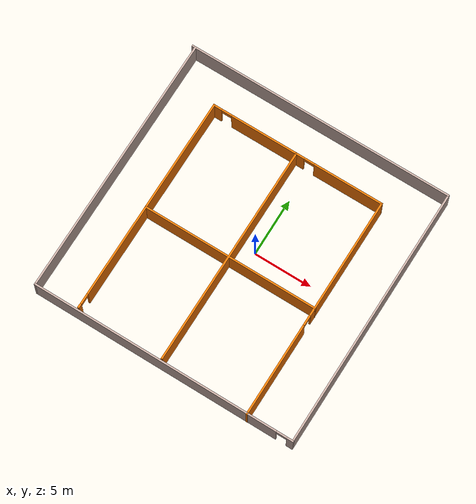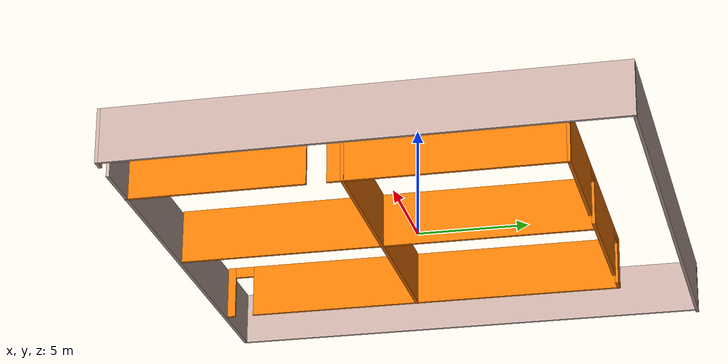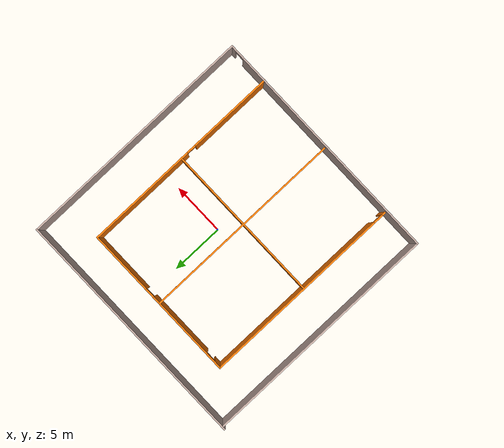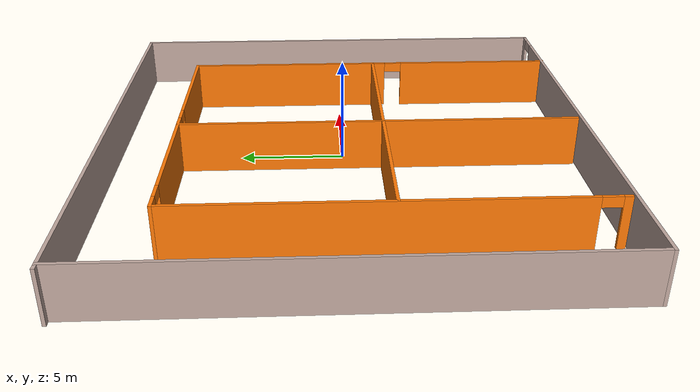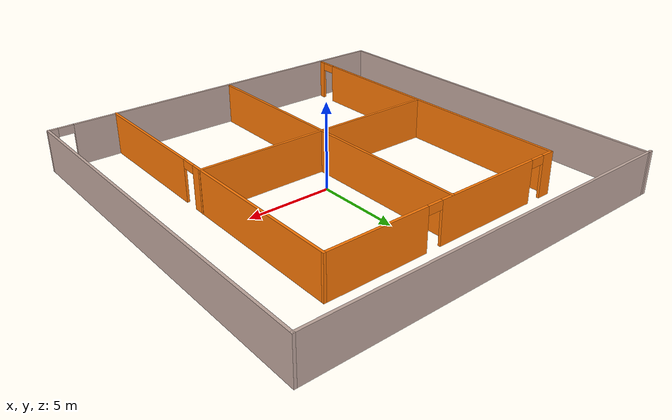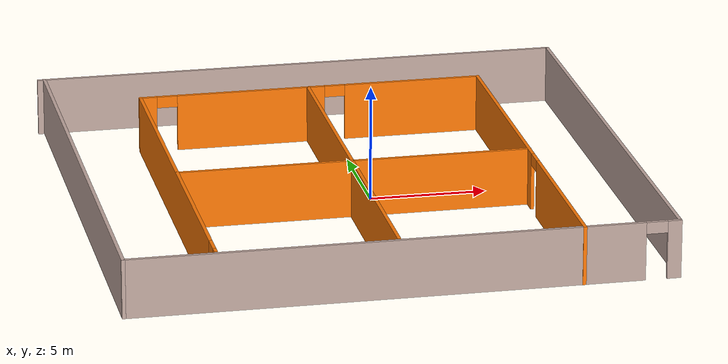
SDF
<?xml version='1.0'?>
<sdf version='1.6'>
  <model name='Building2'>
    <pose frame=''>-1.11523 -0.201092 0 0 -0 0</pose>
    <link name='Wall_0'>
      <collision name='Wall_0_Collision'>
        <geometry>
          <box>
            <size>23.25 0.15 2.5</size>
          </box>
        </geometry>
        <pose frame=''>0 0 1.25 0 -0 0</pose>
      </collision>
      <visual name='Wall_0_Visual'>
        <pose frame=''>0 0 1.25 0 -0 0</pose>
        <geometry>
          <box>
            <size>23.25 0.15 2.5</size>
          </box>
        </geometry>
        <material>
          <script>
            <uri>file://media/materials/scripts/gazebo.material</uri>
            <name>Gazebo/Grey</name>
          </script>
          <ambient>0.760784 0.662745 0.627451 1</ambient>
        </material>
        <meta>
          <layer>0</layer>
        </meta>
      </visual>
      <pose frame=''>-1e-06 11.3105 0 0 -0 0</pose>
    </link>
    <link name='Wall_1'>
      <collision name='Wall_1_Collision'>
        <geometry>
          <box>
            <size>22.75 0.15 2.5</size>
          </box>
        </geometry>
        <pose frame=''>0 0 1.25 0 -0 0</pose>
      </collision>
      <visual name='Wall_1_Visual'>
        <pose frame=''>0 0 1.25 0 -0 0</pose>
        <geometry>
          <box>
            <size>22.75 0.15 2.5</size>
          </box>
        </geometry>
        <material>
          <script>
            <uri>file://media/materials/scripts/gazebo.material</uri>
            <name>Gazebo/Grey</name>
          </script>
          <ambient>0.760784 0.662745 0.627451 1</ambient>
        </material>
        <meta>
          <layer>0</layer>
        </meta>
      </visual>
      <pose frame=''>11.55 0.010515 0 0 0 -1.5708</pose>
    </link>
    <link name='Wall_13'>
      <collision name='Wall_13_Collision'>
        <geometry>
          <box>
            <size>19.25 0.15 2.5</size>
          </box>
        </geometry>
        <pose frame=''>0 0 1.25 0 -0 0</pose>
      </collision>
      <visual name='Wall_13_Visual'>
        <pose frame=''>0 0 1.25 0 -0 0</pose>
        <geometry>
          <box>
            <size>19.25 0.15 2.5</size>
          </box>
        </geometry>
        <material>
          <script>
            <uri>file://media/materials/scripts/gazebo.material</uri>
            <name>Gazebo/Grey</name>
          </script>
          <ambient>0.996078 0.47451 0.0196078 1</ambient>
        </material>
        <meta>
          <layer>0</layer>
        </meta>
      </visual>
      <pose frame=''>-0.068329 -1.51737 0 0 0 -1.5708</pose>
    </link>
    <link name='Wall_2'>
      <pose frame=''>0.124999 -11.2895 0 0 -0 3.14159</pose>
      <visual name='Wall_2_Visual_0'>
        <pose frame=''>-11.2049 0 1.25 0 -0 0</pose>
        <geometry>
          <box>
            <size>0.590222 0.15 2.5</size>
          </box>
        </geometry>
        <material>
          <script>
            <uri>file://media/materials/scripts/gazebo.material</uri>
            <name>Gazebo/Grey</name>
          </script>
          <ambient>0.760784 0.662745 0.627451 1</ambient>
        </material>
        <meta>
          <layer>0</layer>
        </meta>
      </visual>
      <collision name='Wall_2_Collision_0'>
        <geometry>
          <box>
            <size>0.590222 0.15 2.5</size>
          </box>
        </geometry>
        <pose frame=''>-11.2049 0 1.25 0 -0 0</pose>
      </collision>
      <visual name='Wall_2_Visual_1'>
        <pose frame=''>0.745111 0 1.25 0 -0 0</pose>
        <geometry>
          <box>
            <size>21.5098 0.15 2.5</size>
          </box>
        </geometry>
        <material>
          <script>
            <uri>file://media/materials/scripts/gazebo.material</uri>
            <name>Gazebo/Grey</name>
          </script>
          <ambient>0.760784 0.662745 0.627451 1</ambient>
        </material>
        <meta>
          <layer>0</layer>
        </meta>
      </visual>
      <collision name='Wall_2_Collision_1'>
        <geometry>
          <box>
            <size>21.5098 0.15 2.5</size>
          </box>
        </geometry>
        <pose frame=''>0.745111 0 1.25 0 -0 0</pose>
      </collision>
      <visual name='Wall_2_Visual_2'>
        <pose frame=''>-10.4598 0 2.25 0 -0 0</pose>
        <geometry>
          <box>
            <size>0.9 0.15 0.5</size>
          </box>
        </geometry>
        <material>
          <script>
            <uri>file://media/materials/scripts/gazebo.material</uri>
            <name>Gazebo/Grey</name>
          </script>
          <ambient>0.760784 0.662745 0.627451 1</ambient>
        </material>
        <meta>
          <layer>0</layer>
        </meta>
      </visual>
      <collision name='Wall_2_Collision_2'>
        <geometry>
          <box>
            <size>0.9 0.15 0.5</size>
          </box>
        </geometry>
        <pose frame=''>-10.4598 0 2.25 0 -0 0</pose>
      </collision>
    </link>
    <link name='Wall_3'>
      <collision name='Wall_3_Collision'>
        <geometry>
          <box>
            <size>22.75 0.15 2.5</size>
          </box>
        </geometry>
        <pose frame=''>0 0 1.25 0 -0 0</pose>
      </collision>
      <visual name='Wall_3_Visual'>
        <pose frame=''>0 0 1.25 0 -0 0</pose>
        <geometry>
          <box>
            <size>22.75 0.15 2.5</size>
          </box>
        </geometry>
        <material>
          <script>
            <uri>file://media/materials/scripts/gazebo.material</uri>
            <name>Gazebo/Grey</name>
          </script>
          <ambient>0.760784 0.662745 0.627451 1</ambient>
        </material>
        <meta>
          <layer>0</layer>
        </meta>
      </visual>
      <pose frame=''>-11.3 0.010515 0 0 -0 1.5708</pose>
    </link>
    <link name='Wall_5'>
      <pose frame=''>7.57209 -1.63552 0 0 -0 1.5708</pose>
      <visual name='Wall_5_Visual_0'>
        <pose frame=''>-5.69826 0 1.25 0 -0 0</pose>
        <geometry>
          <box>
            <size>8.10348 0.15 2.5</size>
          </box>
        </geometry>
        <material>
          <script>
            <uri>file://media/materials/scripts/gazebo.material</uri>
            <name>Gazebo/Grey</name>
          </script>
          <ambient>0.996078 0.47451 0.0196078 1</ambient>
        </material>
        <meta>
          <layer>0</layer>
        </meta>
      </visual>
      <collision name='Wall_5_Collision_0'>
        <geometry>
          <box>
            <size>8.10348 0.15 2.5</size>
          </box>
        </geometry>
        <pose frame=''>-5.69826 0 1.25 0 -0 0</pose>
      </collision>
      <visual name='Wall_5_Visual_1'>
        <pose frame=''>4.50174 0 1.25 0 -0 0</pose>
        <geometry>
          <box>
            <size>10.4965 0.15 2.5</size>
          </box>
        </geometry>
        <material>
          <script>
            <uri>file://media/materials/scripts/gazebo.material</uri>
            <name>Gazebo/Grey</name>
          </script>
          <ambient>0.996078 0.47451 0.0196078 1</ambient>
        </material>
        <meta>
          <layer>0</layer>
        </meta>
      </visual>
      <collision name='Wall_5_Collision_1'>
        <geometry>
          <box>
            <size>10.4965 0.15 2.5</size>
          </box>
        </geometry>
        <pose frame=''>4.50174 0 1.25 0 -0 0</pose>
      </collision>
      <visual name='Wall_5_Visual_2'>
        <pose frame=''>-1.19652 0 2.25 0 -0 0</pose>
        <geometry>
          <box>
            <size>0.9 0.15 0.5</size>
          </box>
        </geometry>
        <material>
          <script>
            <uri>file://media/materials/scripts/gazebo.material</uri>
            <name>Gazebo/Grey</name>
          </script>
          <ambient>0.996078 0.47451 0.0196078 1</ambient>
        </material>
        <meta>
          <layer>0</layer>
        </meta>
      </visual>
      <collision name='Wall_5_Collision_2'>
        <geometry>
          <box>
            <size>0.9 0.15 0.5</size>
          </box>
        </geometry>
        <pose frame=''>-1.19652 0 2.25 0 -0 0</pose>
      </collision>
    </link>
    <link name='Wall_6'>
      <pose frame=''>0.022094 8.03948 0 0 -0 3.14159</pose>
      <visual name='Wall_6_Visual_0'>
        <pose frame=''>-4.58053 0 1.25 0 -0 0</pose>
        <geometry>
          <box>
            <size>6.08894 0.15 2.5</size>
          </box>
        </geometry>
        <material>
          <script>
            <uri>file://media/materials/scripts/gazebo.material</uri>
            <name>Gazebo/Grey</name>
          </script>
          <ambient>0.996078 0.47451 0.0196078 1</ambient>
        </material>
        <meta>
          <layer>0</layer>
        </meta>
      </visual>
      <collision name='Wall_6_Collision_0'>
        <geometry>
          <box>
            <size>6.08894 0.15 2.5</size>
          </box>
        </geometry>
        <pose frame=''>-4.58053 0 1.25 0 -0 0</pose>
      </collision>
      <visual name='Wall_6_Visual_1'>
        <pose frame=''>2.64925 0 1.25 0 -0 0</pose>
        <geometry>
          <box>
            <size>6.57062 0.15 2.5</size>
          </box>
        </geometry>
        <material>
          <script>
            <uri>file://media/materials/scripts/gazebo.material</uri>
            <name>Gazebo/Grey</name>
          </script>
          <ambient>0.996078 0.47451 0.0196078 1</ambient>
        </material>
        <meta>
          <layer>0</layer>
        </meta>
      </visual>
      <collision name='Wall_6_Collision_1'>
        <geometry>
          <box>
            <size>6.57062 0.15 2.5</size>
          </box>
        </geometry>
        <pose frame=''>2.64925 0 1.25 0 -0 0</pose>
      </collision>
      <visual name='Wall_6_Visual_2'>
        <pose frame=''>7.22978 0 1.25 0 -0 0</pose>
        <geometry>
          <box>
            <size>0.790441 0.15 2.5</size>
          </box>
        </geometry>
        <material>
          <script>
            <uri>file://media/materials/scripts/gazebo.material</uri>
            <name>Gazebo/Grey</name>
          </script>
          <ambient>0.996078 0.47451 0.0196078 1</ambient>
        </material>
        <meta>
          <layer>0</layer>
        </meta>
      </visual>
      <collision name='Wall_6_Collision_2'>
        <geometry>
          <box>
            <size>0.790441 0.15 2.5</size>
          </box>
        </geometry>
        <pose frame=''>7.22978 0 1.25 0 -0 0</pose>
      </collision>
      <visual name='Wall_6_Visual_3'>
        <pose frame=''>-1.08606 0 2.25 0 -0 0</pose>
        <geometry>
          <box>
            <size>0.9 0.15 0.5</size>
          </box>
        </geometry>
        <material>
          <script>
            <uri>file://media/materials/scripts/gazebo.material</uri>
            <name>Gazebo/Grey</name>
          </script>
          <ambient>0.996078 0.47451 0.0196078 1</ambient>
        </material>
        <meta>
          <layer>0</layer>
        </meta>
      </visual>
      <collision name='Wall_6_Collision_3'>
        <geometry>
          <box>
            <size>0.9 0.15 0.5</size>
          </box>
        </geometry>
        <pose frame=''>-1.08606 0 2.25 0 -0 0</pose>
      </collision>
      <visual name='Wall_6_Visual_4'>
        <pose frame=''>6.38456 0 2.25 0 -0 0</pose>
        <geometry>
          <box>
            <size>0.9 0.15 0.5</size>
          </box>
        </geometry>
        <material>
          <script>
            <uri>file://media/materials/scripts/gazebo.material</uri>
            <name>Gazebo/Grey</name>
          </script>
          <ambient>0.996078 0.47451 0.0196078 1</ambient>
        </material>
        <meta>
          <layer>0</layer>
        </meta>
      </visual>
      <collision name='Wall_6_Collision_4'>
        <geometry>
          <box>
            <size>0.9 0.15 0.5</size>
          </box>
        </geometry>
        <pose frame=''>6.38456 0 2.25 0 -0 0</pose>
      </collision>
    </link>
    <link name='Wall_7'>
      <pose frame=''>-7.5279 -1.51052 0 0 0 -1.5708</pose>
      <visual name='Wall_7_Visual_0'>
        <pose frame=''>-0.641428 0 1.25 0 -0 0</pose>
        <geometry>
          <box>
            <size>17.9671 0.15 2.5</size>
          </box>
        </geometry>
        <material>
          <script>
            <uri>file://media/materials/scripts/gazebo.material</uri>
            <name>Gazebo/Grey</name>
          </script>
          <ambient>0.996078 0.47451 0.0196078 1</ambient>
        </material>
        <meta>
          <layer>0</layer>
        </meta>
      </visual>
      <collision name='Wall_7_Collision_0'>
        <geometry>
          <box>
            <size>17.9671 0.15 2.5</size>
          </box>
        </geometry>
        <pose frame=''>-0.641428 0 1.25 0 -0 0</pose>
      </collision>
      <visual name='Wall_7_Visual_1'>
        <pose frame=''>9.43357 0 1.25 0 -0 0</pose>
        <geometry>
          <box>
            <size>0.382856 0.15 2.5</size>
          </box>
        </geometry>
        <material>
          <script>
            <uri>file://media/materials/scripts/gazebo.material</uri>
            <name>Gazebo/Grey</name>
          </script>
          <ambient>0.996078 0.47451 0.0196078 1</ambient>
        </material>
        <meta>
          <layer>0</layer>
        </meta>
      </visual>
      <collision name='Wall_7_Collision_1'>
        <geometry>
          <box>
            <size>0.382856 0.15 2.5</size>
          </box>
        </geometry>
        <pose frame=''>9.43357 0 1.25 0 -0 0</pose>
      </collision>
      <visual name='Wall_7_Visual_2'>
        <pose frame=''>8.79214 0 2.25 0 -0 0</pose>
        <geometry>
          <box>
            <size>0.9 0.15 0.5</size>
          </box>
        </geometry>
        <material>
          <script>
            <uri>file://media/materials/scripts/gazebo.material</uri>
            <name>Gazebo/Grey</name>
          </script>
          <ambient>0.996078 0.47451 0.0196078 1</ambient>
        </material>
        <meta>
          <layer>0</layer>
        </meta>
      </visual>
      <collision name='Wall_7_Collision_2'>
        <geometry>
          <box>
            <size>0.9 0.15 0.5</size>
          </box>
        </geometry>
        <pose frame=''>8.79214 0 2.25 0 -0 0</pose>
      </collision>
    </link>
    <link name='Wall_9'>
      <collision name='Wall_9_Collision'>
        <geometry>
          <box>
            <size>15.25 0.15 2.5</size>
          </box>
        </geometry>
        <pose frame=''>0 0 1.25 0 -0 0</pose>
      </collision>
      <visual name='Wall_9_Visual'>
        <pose frame=''>0 0 1.25 0 -0 0</pose>
        <geometry>
          <box>
            <size>15.25 0.15 2.5</size>
          </box>
        </geometry>
        <material>
          <script>
            <uri>file://media/materials/scripts/gazebo.material</uri>
            <name>Gazebo/Grey</name>
          </script>
          <ambient>0.996078 0.47451 0.0196078 1</ambient>
        </material>
        <meta>
          <layer>0</layer>
        </meta>
      </visual>
      <pose frame=''>0.033742 -1.70878 0 0 -0 0</pose>
    </link>
    <static>1</static>
  </model>
</sdf>
